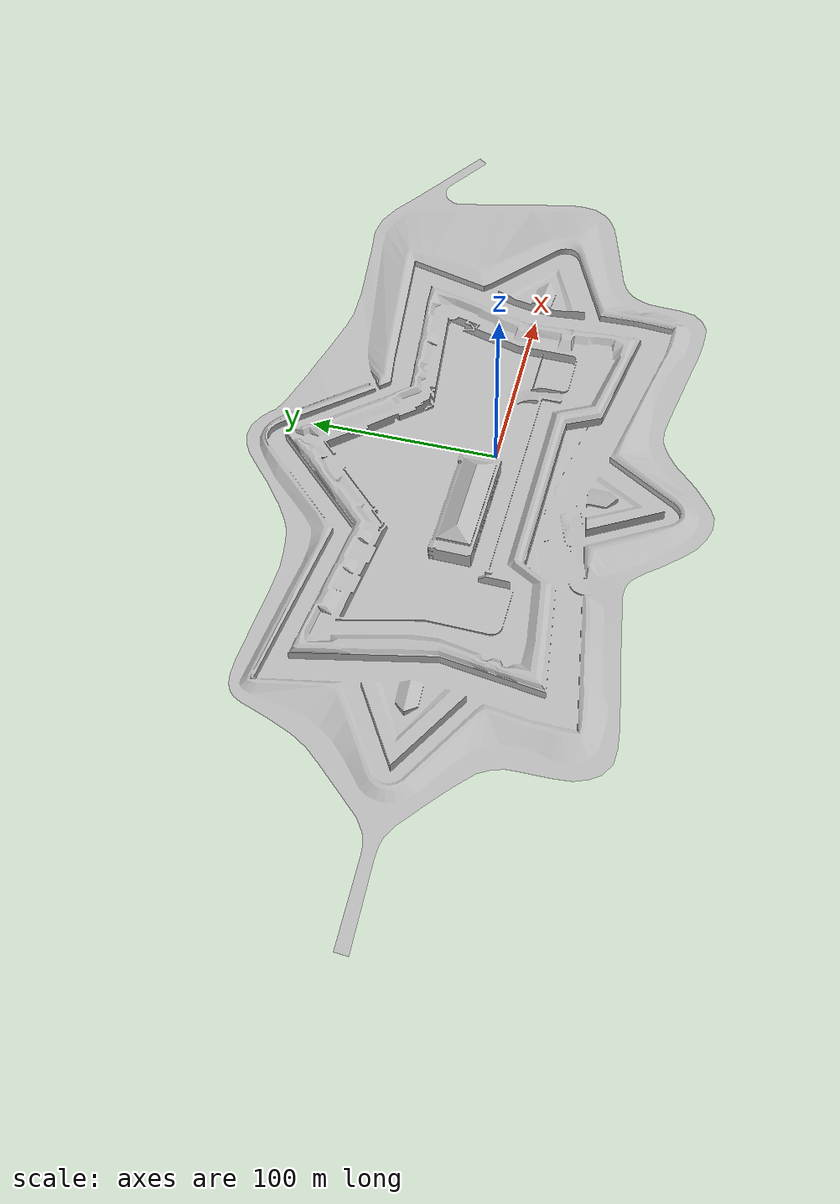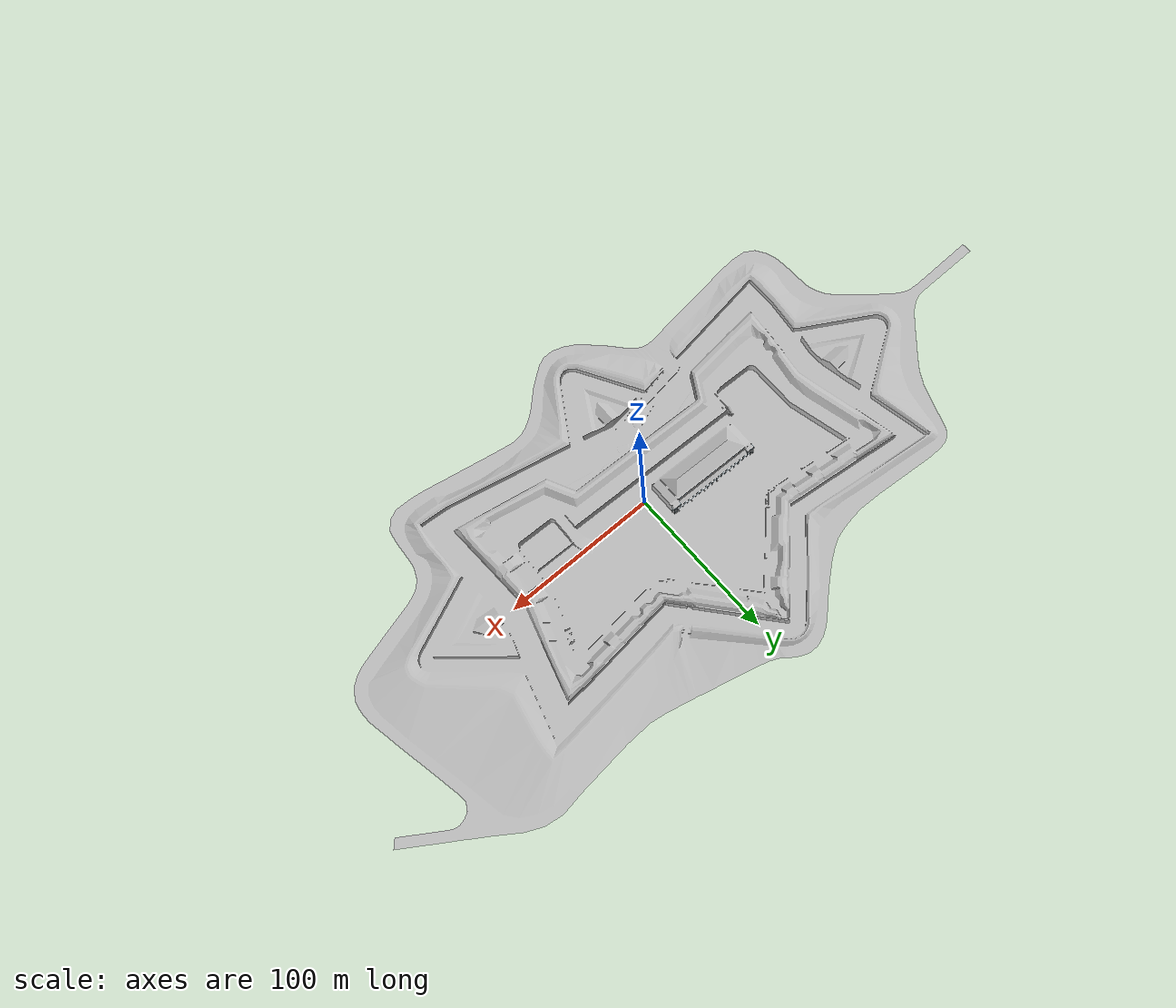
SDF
<sdf version='1.5'>
  <world name='default'>
    <light name='sundir' type='directional'>
      <cast_shadows>1</cast_shadows>
      <pose>0 0 10 0 -0 0</pose>
      <diffuse>1.0 0.95 0.8 1</diffuse>
      <specular>0.7 0.7 0.7 1</specular>
      <attenuation>
        <range>1000</range>
        <constant>0.9</constant>
        <linear>0.01</linear>
        <quadratic>0.001</quadratic>
      </attenuation>
      <direction>-0.3 0.4 -1.0</direction>
    </light>
    <light name='skydir1' type='directional'>
      <cast_shadows>0</cast_shadows>
      <pose>10 0 10 0 -0 0</pose>
      <diffuse>0.5 0.5 0.52 1</diffuse>
      <specular>0.1 0.1 0.1 1</specular>
      <attenuation>
        <range>1000</range>
        <constant>0.9</constant>
        <linear>0.01</linear>
        <quadratic>0.001</quadratic>
      </attenuation>
      <direction>0.6 -0.4 -0.9</direction>
    </light>
    <light name='skydir2' type='directional'>
      <cast_shadows>0</cast_shadows>
      <pose>20 0 10 0 -0 0</pose>
      <diffuse>0.5 0.5 0.52 1</diffuse>
      <specular>0.1 0.1 0.1 1</specular>
      <attenuation>
        <range>1000</range>
        <constant>0.9</constant>
        <linear>0.01</linear>
        <quadratic>0.001</quadratic>
      </attenuation>
      <direction>0. 0.6 -0.9</direction>
    </light>
    <light name='refdir' type='directional'>
      <cast_shadows>0</cast_shadows>
      <pose>30 0 10 0 -0 0</pose>
      <diffuse>0.52 0.5 0.5 1</diffuse>
      <specular>0.1 0.1 0.1 1</specular>
      <attenuation>
        <range>1000</range>
        <constant>0.9</constant>
        <linear>0.01</linear>
        <quadratic>0.001</quadratic>
      </attenuation>
      <direction>-0.6 -0.5 0.8</direction>
    </light>
    <model name='citadel'>
      <pose>-300 -200 0 1.5708 -0 0</pose>
      <static>1</static>
      <link name='body'>
        <visual name='visual'>
          <geometry>
            <mesh>
              <uri>file:///home/rohan/work_workspace/src/Simulator/spiri_description/world/GazeboCitadel/Gazebo/citadel_tex1.dae</uri>
            </mesh>
          </geometry>
        </visual>
      </link>
    </model>
    <scene>
      <ambient>0.45 0.5 0.45 1</ambient>
      <background>0.0 0.7 1.0 1</background>
      <shadows>1</shadows>
    </scene>
  </world>
</sdf>
